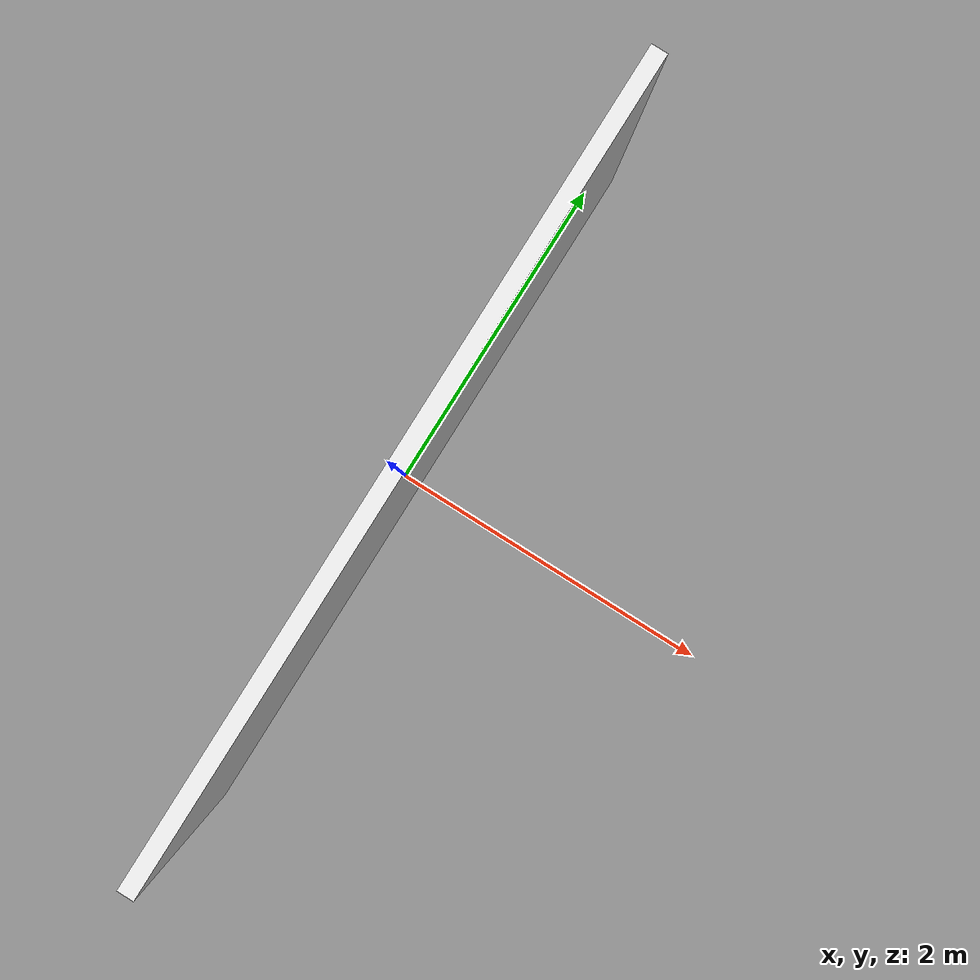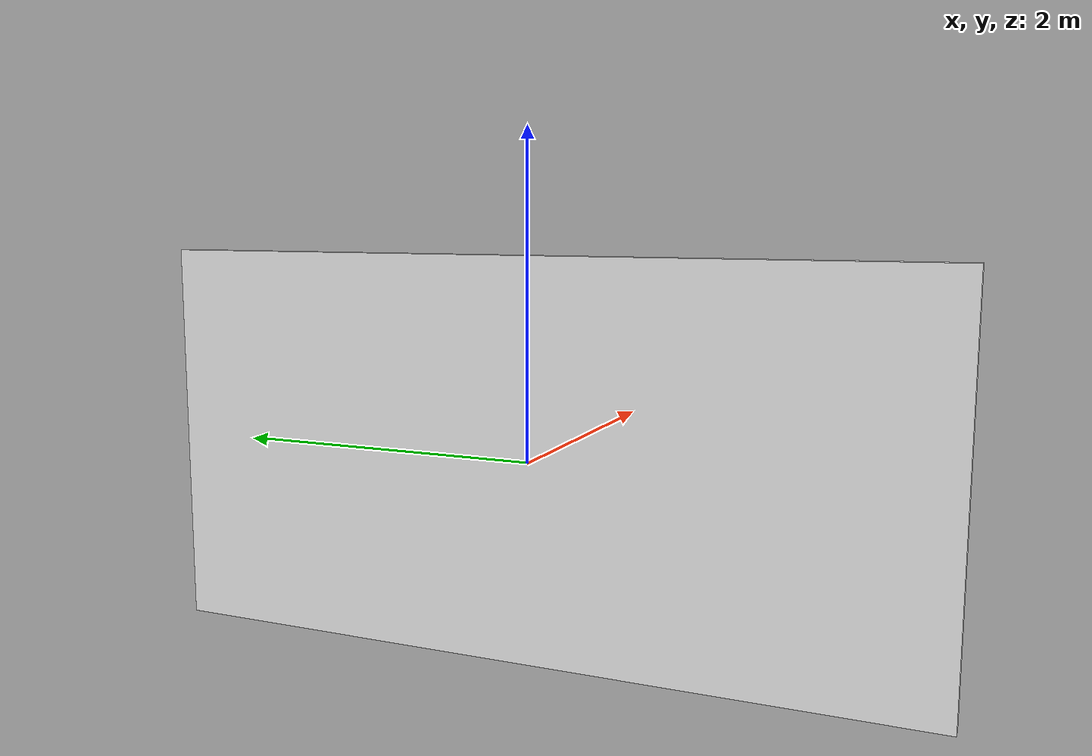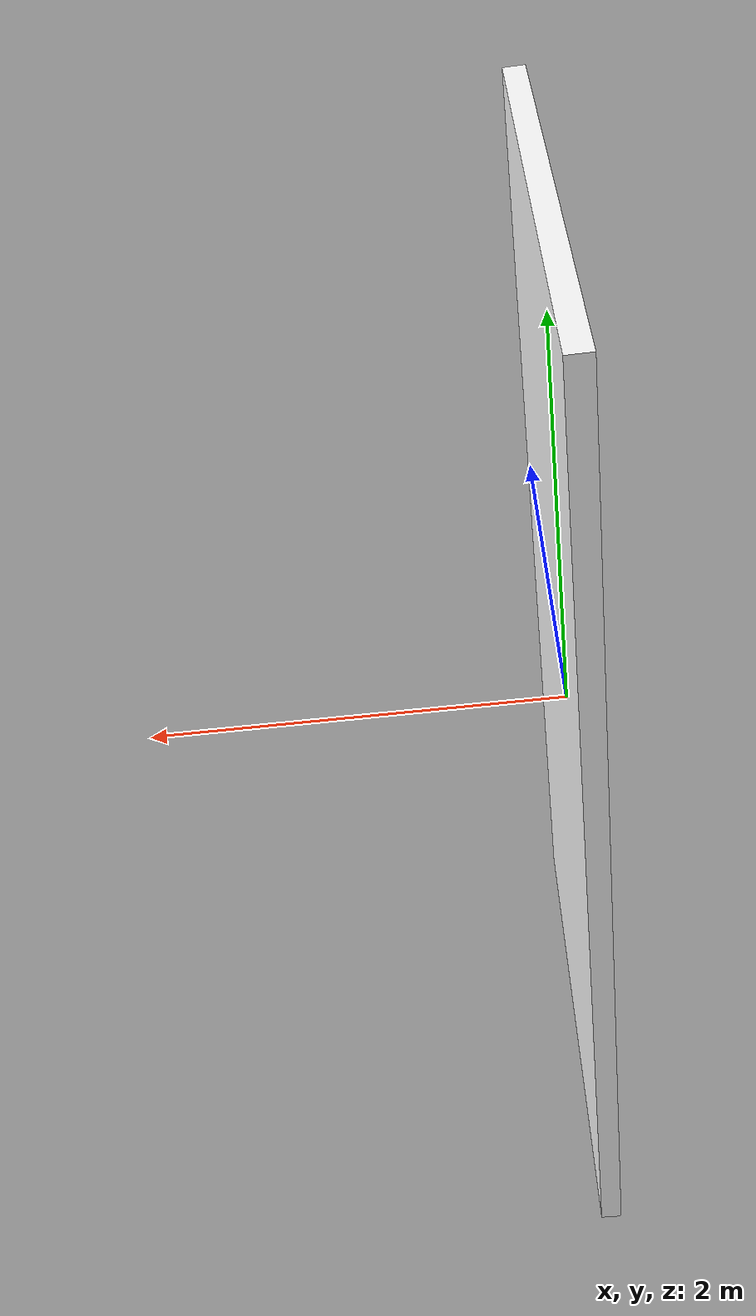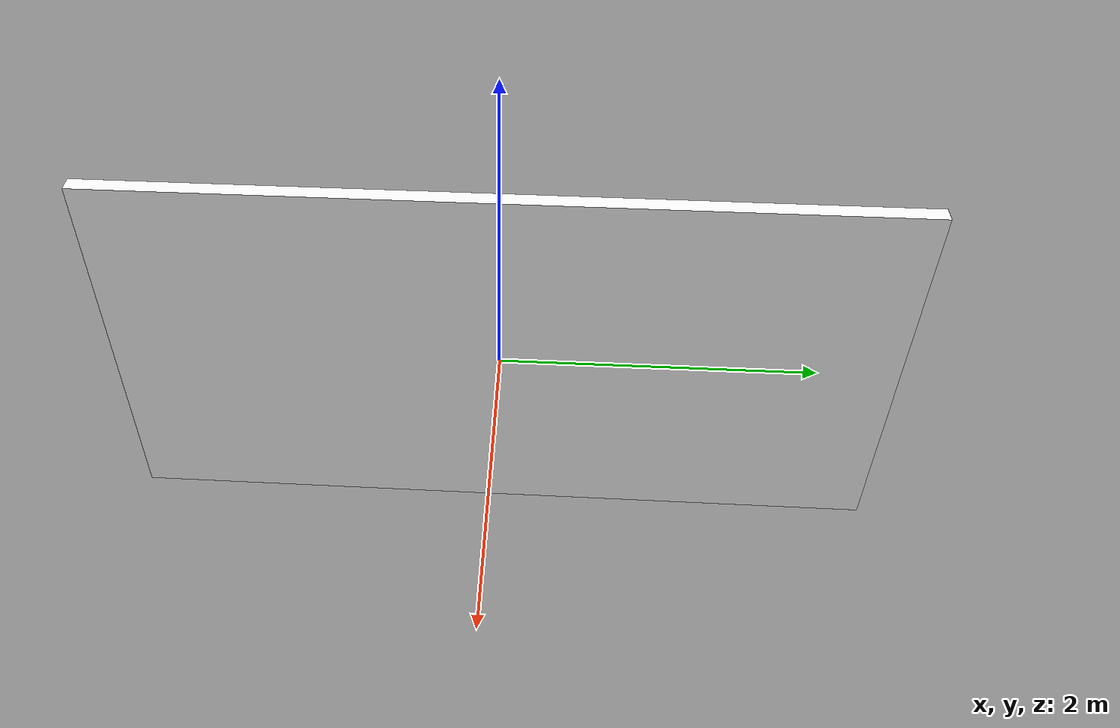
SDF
<?xml version="1.0"?>
<sdf version='1.4'>
  <model name='room_wall_25x5m'>
    <link name="link">
      <visual name="visual">
        <geometry>
          <box>
            <size>0.1 5.0 2.5</size>
          </box>
        </geometry>
        <material>
          <pbr>
            <metal>
              <albedo_map>textures/wall_texture_25x5m.jpg</albedo_map>
            <metalness>0.0</metalness><roughness>0.90</roughness>
            </metal>
          </pbr>
          <ambient>1 1 1 1</ambient>
          <diffuse>1 1 1 1</diffuse>
          <specular>1 1 1 1</specular>
          <emissive>0 0 0 1</emissive>
        </material>
        <cast_shadows>1</cast_shadows>
        <transparency>0</transparency>
      </visual>
      <collision name ="collision">
        <geometry>
           <box>
            <size>0.1 5.0 2.5</size>
          </box>
        </geometry>
      </collision>
    </link>
    <static>1</static>
    <allow_auto_disable>1</allow_auto_disable>
  </model>
</sdf>
